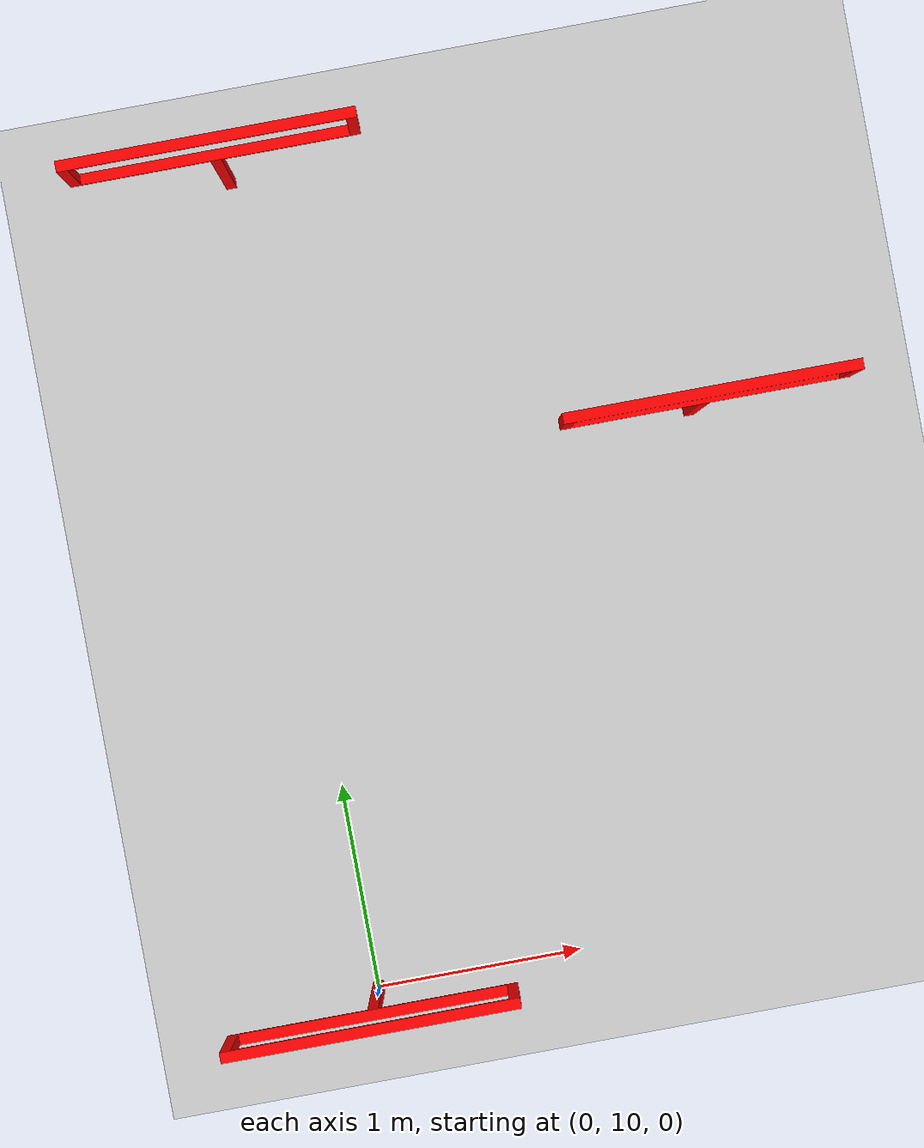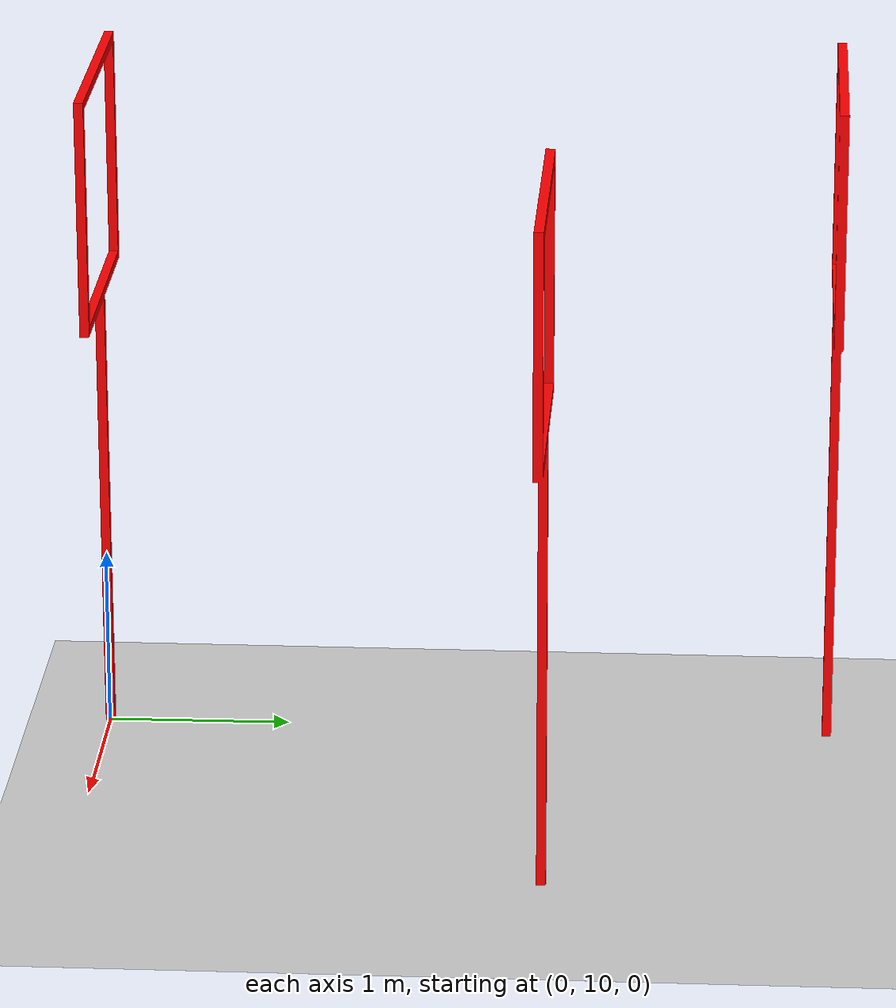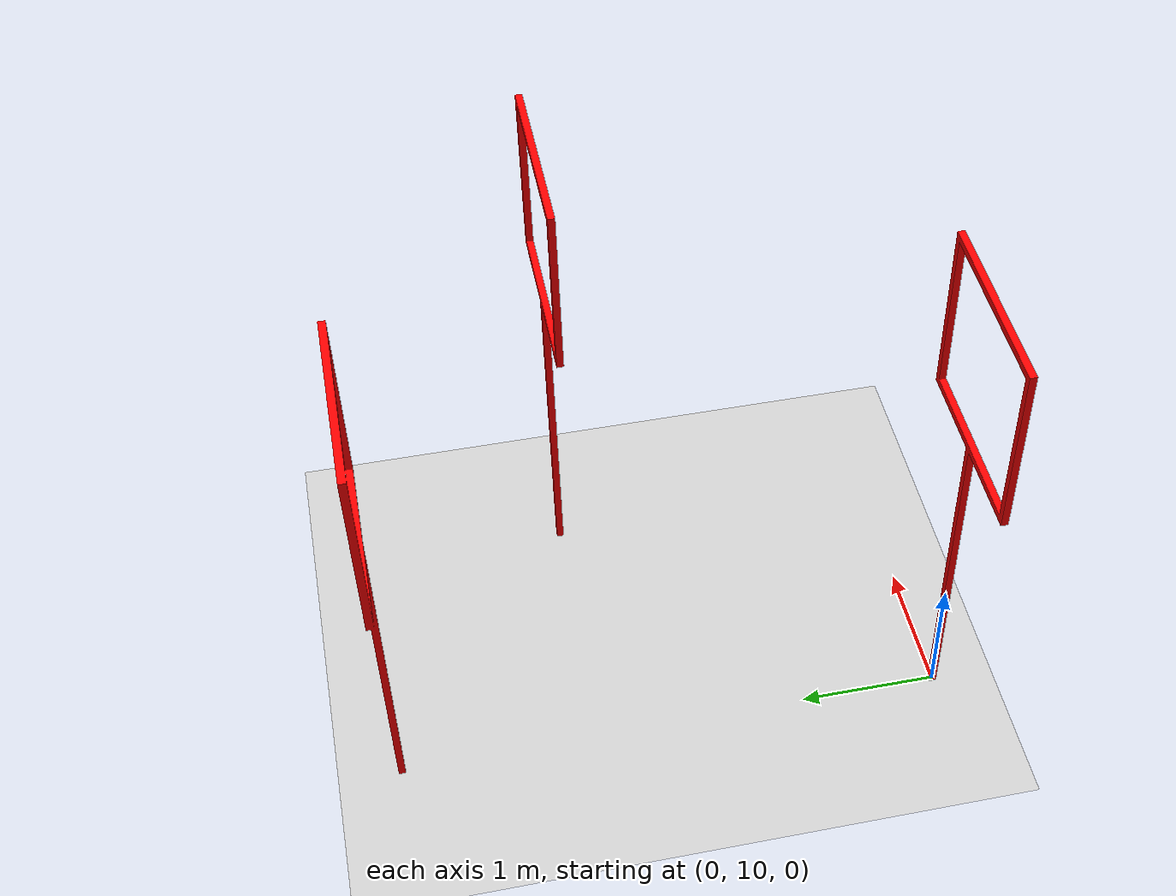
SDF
<?xml version="1.0" ?>
<sdf version="1.5">
  <world name="default">
    <model name='iROS2016 Track1'>
        <link name='gate_08'>
          <pose frame=''>2 12.5 0 0 0 0</pose>
          <visual name='visual'>
            <geometry>
              <mesh>
                <uri>/home/jadit19/FPV-Drone-Racing/fpv_ws/src/fpvbot_discription/meshes/08.dae</uri>
              </mesh>
            </geometry>
            <material>
              <ambient>1 0 0 1</ambient>
              <diffuse>1 0 0 1</diffuse>
              <specular>1 0 0 0</specular>
              <emissive>1 0 0 1</emissive>
            </material>
          </visual>
          <self_collide>0</self_collide>
          <enable_wind>0</enable_wind>
          <kinematic>0</kinematic>
        </link>
        <static>1</static>
        <allow_auto_disable>1</allow_auto_disable>
      </model>

    <model name='iROS2016 Track2'>
        <link name='gate_08'>
          <pose frame=''>0 10 0 0 0 0</pose>
          <visual name='visual'>
            <geometry>
              <mesh>
                <uri>/home/jadit19/FPV-Drone-Racing/fpv_ws/src/fpvbot_discription/meshes/08.dae</uri>
              </mesh>
            </geometry>
            <material>
              <ambient>1 0 0 1</ambient>
              <diffuse>1 0 0 1</diffuse>
              <specular>1 0 0 0</specular>
              <emissive>1 0 0 1</emissive>
            </material>
          </visual>
          <self_collide>0</self_collide>
          <enable_wind>0</enable_wind>
          <kinematic>0</kinematic>
        </link>
        <static>1</static>
        <allow_auto_disable>1</allow_auto_disable>
      </model>

      <model name='iROS2016 Track3'>
        <link name='gate_08'>
          <pose frame=''>0 14 0 0 0 0</pose>
          <visual name='visual'>
            <geometry>
              <mesh>
                <uri>/home/jadit19/FPV-Drone-Racing/fpv_ws/src/fpvbot_discription/meshes/08.dae</uri>
              </mesh>
            </geometry>
            <material>
              <ambient>1 0 0 1</ambient>
              <diffuse>1 0 0 1</diffuse>
              <specular>1 0 0 0</specular>
              <emissive>1 0 0 1</emissive>
            </material>
          </visual>
          <self_collide>0</self_collide>
          <enable_wind>0</enable_wind>
          <kinematic>0</kinematic>
        </link>
        <static>1</static>
        <allow_auto_disable>1</allow_auto_disable>
      </model>

    <light name='sun' type='directional'>
        <cast_shadows>0</cast_shadows>
        <pose frame=''>0 0 10 0 -0 0</pose>
        <diffuse>0.8 0.8 0.8 1</diffuse>
        <specular>0.2 0.2 0.2 1</specular>
        <attenuation>
          <range>1000</range>
          <constant>0.9</constant>
          <linear>0.01</linear>
          <quadratic>0.001</quadratic>
        </attenuation>
        <direction>-0.5 0.1 -0.9</direction>
      </light>
      <model name='ground_plane'>
        <static>1</static>
        <link name='link'>
          <collision name='collision'>
            <geometry>
              <plane>
                <normal>0 0 1</normal>
                <size>100 100</size>
              </plane>
            </geometry>
            <surface>
              <friction>
                <ode>
                  <mu>100</mu>
                  <mu2>50</mu2>
                </ode>
                <torsional>
                  <ode/>
                </torsional>
              </friction>
              <contact>
                <ode/>
              </contact>
              <bounce/>
            </surface>
            <max_contacts>10</max_contacts>
          </collision>
          <visual name='visual'>
            <cast_shadows>0</cast_shadows>
            <geometry>
              <plane>
                <normal>0 0 1</normal>
                <size>100 100</size>
              </plane>
            </geometry>
            <material>
              <script>
                <uri>file://media/materials/scripts/gazebo.material</uri>
                <name>Gazebo/Grey</name>
              </script>
            </material>
          </visual>
          <self_collide>0</self_collide>
          <enable_wind>0</enable_wind>
          <kinematic>0</kinematic>
        </link>
      </model>
      <gravity>0 0 -9.8</gravity>
      <magnetic_field>6e-06 2.3e-05 -4.2e-05</magnetic_field>
      <atmosphere type='adiabatic'/>

      <physics name='default_physics' default='0' type='ode'>
        <gravity>0 0 -9.8066</gravity>
        <ode>
            <solver>
            <type>quick</type>
            <iters>10</iters>
            <sor>1.3</sor>
            <use_dynamic_moi_rescaling>0</use_dynamic_moi_rescaling>
            </solver>
            <constraints>
            <cfm>0</cfm>
            <erp>0.2</erp>
            <contact_max_correcting_vel>100</contact_max_correcting_vel>
            <contact_surface_layer>0.001</contact_surface_layer>
            </constraints>
        </ode>
        <max_step_size>0.001</max_step_size>
        <real_time_factor>1</real_time_factor>
        <real_time_update_rate>1000</real_time_update_rate>
        <magnetic_field>6e-06 2.3e-05 -4.2e-05</magnetic_field>
      </physics>
      <scene>
        <ambient>0.4 0.4 0.4 1</ambient>
        <background>0.7 0.7 0.7 1</background>
        <shadows>0</shadows>
      </scene>
      <wind/>
      <spherical_coordinates>
        <surface_model>EARTH_WGS84</surface_model>
        <latitude_deg>0</latitude_deg>
        <longitude_deg>0</longitude_deg>
        <elevation>0</elevation>
        <heading_deg>0</heading_deg>
      </spherical_coordinates>

  </world>
</sdf>
